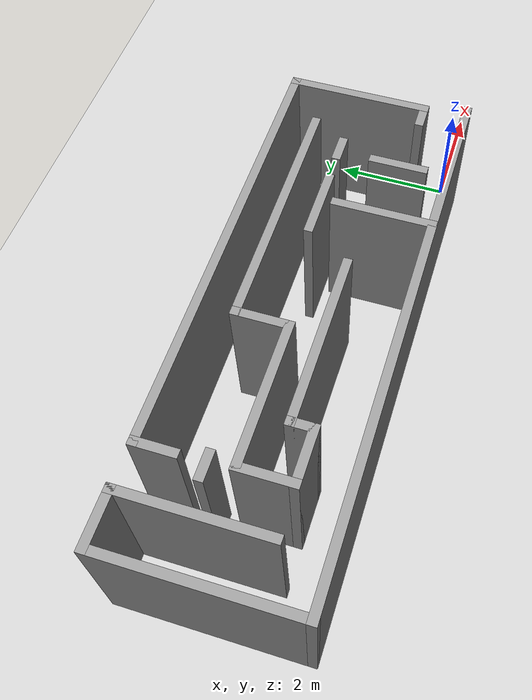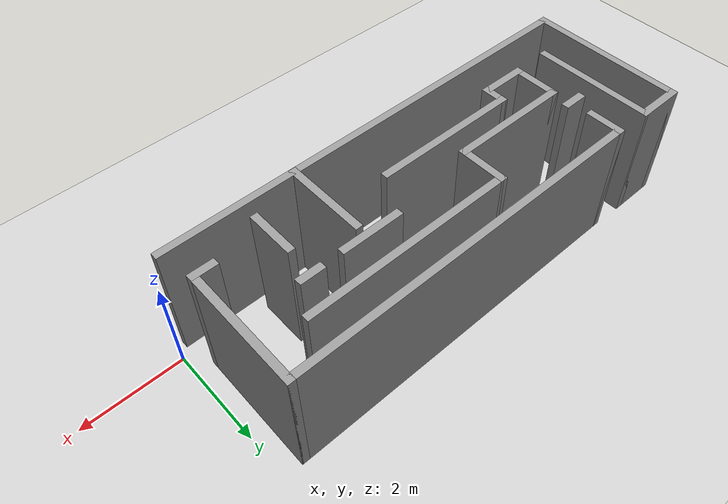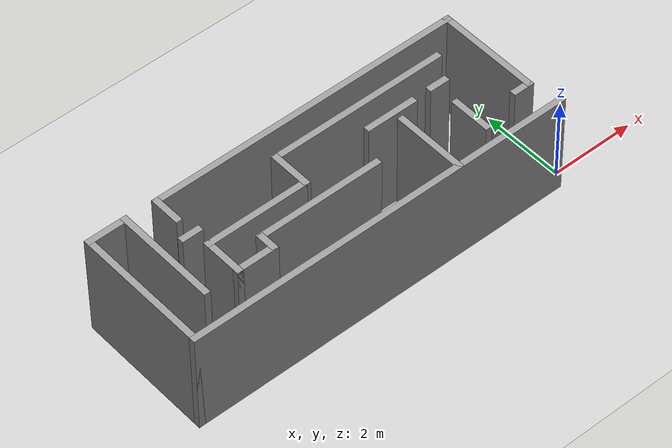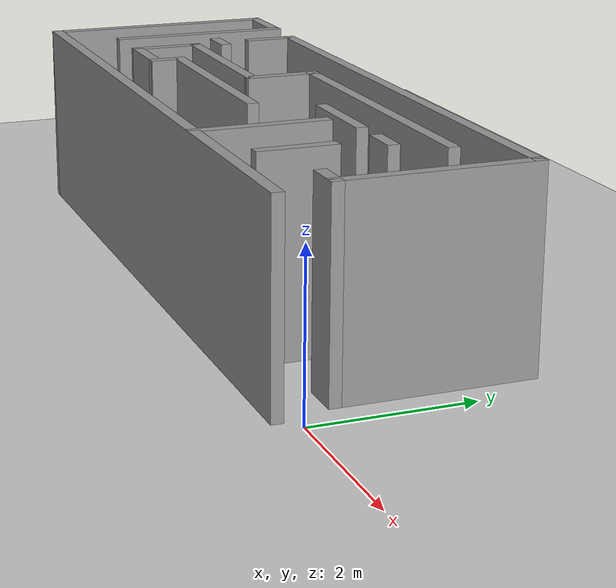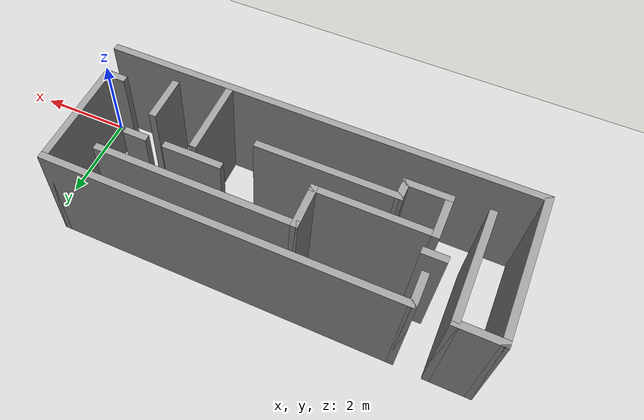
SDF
<sdf version="1.7">
 <world name="default">
  <light name="sun" type="directional">
   <pose>0 0 10 0 -0 0</pose>
   <diffuse>0.8 0.8 0.8 1</diffuse>
   <specular>0.2 0.2 0.2 1</specular>
   <attenuation>
    <range>1000</range>
    <constant>0.9</constant>
    <linear>0.01</linear>
    <quadratic>0.001</quadratic>
   </attenuation>
   <direction>-0.5 0.1 -0.9</direction>
   <spot><inner_angle>0</inner_angle><outer_angle>0</outer_angle><falloff>0</falloff></spot>
  </light>
  <model name="ground_plane">
   <static>1</static>
   <link name="link">
    <collision name="collision">
     <geometry><plane><normal>0 0 1</normal><size>100 100</size></plane></geometry>
     <surface>
      <contact><collide_bitmask>65535</collide_bitmask></contact>
      <friction><ode><mu>100</mu><mu2>50</mu2></ode></friction>
     </surface>
    </collision>
    <visual name="visual">
     <cast_shadows>0</cast_shadows>
     <geometry><plane><normal>0 0 1</normal><size>100 100</size></plane></geometry>
     <material>
      <script><uri>file://media/materials/scripts/gazebo.material</uri><name>Gazebo/Grey</name></script>
     </material>
    </visual>
   </link>
  </model>
  <gravity>0 0 -9.8</gravity>
  <magnetic_field>6e-06 2.3e-05 -4.2e-05</magnetic_field>
  <atmosphere type="adiabatic"/>
  <physics type="ode">
   <max_step_size>0.001</max_step_size>
   <real_time_factor>1</real_time_factor>
   <real_time_update_rate>1000</real_time_update_rate>
  </physics>
  <scene><ambient>0.4 0.4 0.4 1</ambient><background>0.7 0.7 0.7 1</background><shadows>1</shadows></scene>
  <spherical_coordinates>
   <surface_model>EARTH_WGS84</surface_model>
   <latitude_deg>0</latitude_deg>
   <longitude_deg>0</longitude_deg>
   <elevation>0</elevation>
   <heading_deg>0</heading_deg>
  </spherical_coordinates>
  <model name="maze.world">
   <pose>-4.79755 1.63842 0 0 -0 0</pose>
   <link name="Wall_0">
    <collision name="Wall_0_Collision">
     <geometry><box><size>9.25 0.15 2.5</size></box></geometry>
     <pose>0 0 1.25 0 -0 0</pose>
    </collision>
    <visual name="Wall_0_Visual">
     <pose>0 0 1.25 0 -0 0</pose>
     <geometry><box><size>9.25 0.15 2.5</size></box></geometry>
     <material>
      <script><uri>file://media/materials/scripts/gazebo.material</uri><name>Gazebo/Grey</name></script>
      <ambient>1 1 1 1</ambient>
     </material>
     <meta><layer>0</layer></meta>
    </visual>
    <pose>0 -1.8725 0 0 -0 0</pose>
   </link>
   <link name="Wall_10">
    <collision name="Wall_10_Collision">
     <geometry><box><size>0.5 0.15 2.5</size></box></geometry>
     <pose>0 0 1.25 0 -0 0</pose>
    </collision>
    <visual name="Wall_10_Visual">
     <pose>0 0 1.25 0 -0 0</pose>
     <geometry><box><size>0.5 0.15 2.5</size></box></geometry>
     <material>
      <script><uri>file://media/materials/scripts/gazebo.material</uri><name>Gazebo/Grey</name></script>
      <ambient>1 1 1 1</ambient>
     </material>
     <meta><layer>0</layer></meta>
    </visual>
    <pose>4.205 -1.1525 0 0 -0 3.14159</pose>
   </link>
   <link name="Wall_12">
    <collision name="Wall_12_Collision">
     <geometry><box><size>1 0.15 2.5</size></box></geometry>
     <pose>0 0 1.25 0 -0 0</pose>
    </collision>
    <visual name="Wall_12_Visual">
     <pose>0 0 1.25 0 -0 0</pose>
     <geometry><box><size>1 0.15 2.5</size></box></geometry>
     <material>
      <script><uri>file://media/materials/scripts/gazebo.material</uri><name>Gazebo/Grey</name></script>
      <ambient>1 1 1 1</ambient>
     </material>
     <meta><layer>0</layer></meta>
    </visual>
    <pose>-2.91 -0.6975 0 0 -0 1.5708</pose>
   </link>
   <link name="Wall_13">
    <collision name="Wall_13_Collision">
     <geometry><box><size>2.5 0.15 2.5</size></box></geometry>
     <pose>0 0 1.25 0 -0 0</pose>
    </collision>
    <visual name="Wall_13_Visual">
     <pose>0 0 1.25 0 -0 0</pose>
     <geometry><box><size>2.5 0.15 2.5</size></box></geometry>
     <material>
      <script><uri>file://media/materials/scripts/gazebo.material</uri><name>Gazebo/Grey</name></script>
      <ambient>1 1 1 1</ambient>
     </material>
     <meta><layer>0</layer></meta>
    </visual>
    <pose>-1.735 -0.2725 0 0 -0 0</pose>
   </link>
   <link name="Wall_16">
    <collision name="Wall_16_Collision">
     <geometry><box><size>1 0.15 2.5</size></box></geometry>
     <pose>0 0 1.25 0 -0 0</pose>
    </collision>
    <visual name="Wall_16_Visual">
     <pose>0 0 1.25 0 -0 0</pose>
     <geometry><box><size>1 0.15 2.5</size></box></geometry>
     <material>
      <script><uri>file://media/materials/scripts/gazebo.material</uri><name>Gazebo/Grey</name></script>
      <ambient>1 1 1 1</ambient>
     </material>
     <meta><layer>0</layer></meta>
    </visual>
    <pose>-2.485 -1.1225 0 0 -0 0</pose>
   </link>
   <link name="Wall_2">
    <collision name="Wall_2_Collision">
     <geometry><box><size>3.25 0.15 2.5</size></box></geometry>
     <pose>0 0 1.25 0 -0 0</pose>
    </collision>
    <visual name="Wall_2_Visual">
     <pose>0 0 1.25 0 -0 0</pose>
     <geometry><box><size>3.25 0.15 2.5</size></box></geometry>
     <material>
      <script><uri>file://media/materials/scripts/gazebo.material</uri><name>Gazebo/Grey</name></script>
      <ambient>1 1 1 1</ambient>
     </material>
     <meta><layer>0</layer></meta>
    </visual>
    <pose>-4.55 -0.3225 0 0 -0 1.5708</pose>
   </link>
   <link name="Wall_20">
    <collision name="Wall_20_Collision">
     <geometry><box><size>0.5 0.15 2.5</size></box></geometry>
     <pose>0 0 1.25 0 -0 0</pose>
    </collision>
    <visual name="Wall_20_Visual">
     <pose>0 0 1.25 0 -0 0</pose>
     <geometry><box><size>0.5 0.15 2.5</size></box></geometry>
     <material>
      <script><uri>file://media/materials/scripts/gazebo.material</uri><name>Gazebo/Grey</name></script>
      <ambient>1 1 1 1</ambient>
     </material>
     <meta><layer>0</layer></meta>
    </visual>
    <pose>-2.06 -0.9475 0 0 -0 1.5708</pose>
   </link>
   <link name="Wall_21">
    <collision name="Wall_21_Collision">
     <geometry><box><size>3 0.15 2.5</size></box></geometry>
     <pose>0 0 1.25 0 -0 0</pose>
    </collision>
    <visual name="Wall_21_Visual">
     <pose>0 0 1.25 0 -0 0</pose>
     <geometry><box><size>3 0.15 2.5</size></box></geometry>
     <material>
      <script><uri>file://media/materials/scripts/gazebo.material</uri><name>Gazebo/Grey</name></script>
      <ambient>1 1 1 1</ambient>
     </material>
     <meta><layer>0</layer></meta>
    </visual>
    <pose>-0.635 -0.7725 0 0 -0 0</pose>
   </link>
   <link name="Wall_23">
    <collision name="Wall_23_Collision">
     <geometry><box><size>1.75 0.15 2.5</size></box></geometry>
     <pose>0 0 1.25 0 -0 0</pose>
    </collision>
    <visual name="Wall_23_Visual">
     <pose>0 0 1.25 0 -0 0</pose>
     <geometry><box><size>1.75 0.15 2.5</size></box></geometry>
     <material>
      <script><uri>file://media/materials/scripts/gazebo.material</uri><name>Gazebo/Grey</name></script>
      <ambient>1 1 1 1</ambient>
     </material>
     <meta><layer>0</layer></meta>
    </visual>
    <pose>1.91 -1.0625 0 0 -0 1.5708</pose>
   </link>
   <link name="Wall_25">
    <collision name="Wall_25_Collision">
     <geometry><box><size>1 0.15 2.5</size></box></geometry>
     <pose>0 0 1.25 0 -0 0</pose>
    </collision>
    <visual name="Wall_25_Visual">
     <pose>0 0 1.25 0 -0 0</pose>
     <geometry><box><size>1 0.15 2.5</size></box></geometry>
     <material>
      <script><uri>file://media/materials/scripts/gazebo.material</uri><name>Gazebo/Grey</name></script>
      <ambient>1 1 1 1</ambient>
     </material>
     <meta><layer>0</layer></meta>
    </visual>
    <pose>2.99 -1.0375 0 0 -0 1.5708</pose>
   </link>
   <link name="Wall_27">
    <collision name="Wall_27_Collision">
     <geometry><box><size>1 0.15 2.5</size></box></geometry>
     <pose>0 0 1.25 0 -0 0</pose>
    </collision>
    <visual name="Wall_27_Visual">
     <pose>0 0 1.25 0 -0 0</pose>
     <geometry><box><size>1 0.15 2.5</size></box></geometry>
     <material>
      <script><uri>file://media/materials/scripts/gazebo.material</uri><name>Gazebo/Grey</name></script>
      <ambient>1 1 1 1</ambient>
     </material>
     <meta><layer>0</layer></meta>
    </visual>
    <pose>-0.56 0.1525 0 0 -0 1.5708</pose>
   </link>
   <link name="Wall_28">
    <collision name="Wall_28_Collision">
     <geometry><box><size>4.25 0.15 2.5</size></box></geometry>
     <pose>0 0 1.25 0 -0 0</pose>
    </collision>
    <visual name="Wall_28_Visual">
     <pose>0 0 1.25 0 -0 0</pose>
     <geometry><box><size>4.25 0.15 2.5</size></box></geometry>
     <material>
      <script><uri>file://media/materials/scripts/gazebo.material</uri><name>Gazebo/Grey</name></script>
      <ambient>1 1 1 1</ambient>
     </material>
     <meta><layer>0</layer></meta>
    </visual>
    <pose>1.49 0.5775 0 0 -0 0</pose>
   </link>
   <link name="Wall_30">
    <collision name="Wall_30_Collision">
     <geometry><box><size>0.5 0.15 2.5</size></box></geometry>
     <pose>0 0 1.25 0 -0 0</pose>
    </collision>
    <visual name="Wall_30_Visual">
     <pose>0 0 1.25 0 -0 0</pose>
     <geometry><box><size>0.5 0.15 2.5</size></box></geometry>
     <material>
      <script><uri>file://media/materials/scripts/gazebo.material</uri><name>Gazebo/Grey</name></script>
      <ambient>1 1 1 1</ambient>
     </material>
     <meta><layer>0</layer></meta>
    </visual>
    <pose>3.045 -0.0025 0 0 -0 0</pose>
   </link>
   <link name="Wall_32">
    <collision name="Wall_32_Collision">
     <geometry><box><size>0.5 0.15 2.5</size></box></geometry>
     <pose>0 0 1.25 0 -0 0</pose>
    </collision>
    <visual name="Wall_32_Visual">
     <pose>0 0 1.25 0 -0 0</pose>
     <geometry><box><size>0.5 0.15 2.5</size></box></geometry>
     <material>
      <script><uri>file://media/materials/scripts/gazebo.material</uri><name>Gazebo/Grey</name></script>
      <ambient>1 1 1 1</ambient>
     </material>
     <meta><layer>0</layer></meta>
    </visual>
    <pose>-3.015 0.1375 0 0 -0 0</pose>
   </link>
   <link name="Wall_34">
    <collision name="Wall_34_Collision">
     <geometry><box><size>1.25 0.15 2.5</size></box></geometry>
     <pose>0 0 1.25 0 -0 0</pose>
    </collision>
    <visual name="Wall_34_Visual">
     <pose>0 0 1.25 0 -0 0</pose>
     <geometry><box><size>1.25 0.15 2.5</size></box></geometry>
     <material>
      <script><uri>file://media/materials/scripts/gazebo.material</uri><name>Gazebo/Grey</name></script>
      <ambient>1 1 1 1</ambient>
     </material>
     <meta><layer>0</layer></meta>
    </visual>
    <pose>1.82 -0.0125 0 0 -0 3.14159</pose>
   </link>
   <link name="Wall_4">
    <collision name="Wall_4_Collision">
     <geometry><box><size>1 0.15 2.5</size></box></geometry>
     <pose>0 0 1.25 0 -0 0</pose>
    </collision>
    <visual name="Wall_4_Visual">
     <pose>0 0 1.25 0 -0 0</pose>
     <geometry><box><size>1 0.15 2.5</size></box></geometry>
     <material>
      <script><uri>file://media/materials/scripts/gazebo.material</uri><name>Gazebo/Grey</name></script>
      <ambient>1 1 1 1</ambient>
     </material>
     <meta><layer>0</layer></meta>
    </visual>
    <pose>-4.125 1.2275 0 0 -0 0</pose>
   </link>
   <link name="Wall_5">
    <collision name="Wall_5_Collision">
     <geometry><box><size>2.5 0.15 2.5</size></box></geometry>
     <pose>0 0 1.25 0 -0 0</pose>
    </collision>
    <visual name="Wall_5_Visual">
     <pose>0 0 1.25 0 -0 0</pose>
     <geometry><box><size>2.5 0.15 2.5</size></box></geometry>
     <material>
      <script><uri>file://media/materials/scripts/gazebo.material</uri><name>Gazebo/Grey</name></script>
      <ambient>1 1 1 1</ambient>
     </material>
     <meta><layer>0</layer></meta>
    </visual>
    <pose>-3.7 0.0525 0 0 -0 -1.5708</pose>
   </link>
   <link name="Wall_7">
    <collision name="Wall_7_Collision">
     <geometry><box><size>0.75 0.15 2.5</size></box></geometry>
     <pose>0 0 1.25 0 -0 0</pose>
    </collision>
    <visual name="Wall_7_Visual">
     <pose>0 0 1.25 0 -0 0</pose>
     <geometry><box><size>0.75 0.15 2.5</size></box></geometry>
     <material>
      <script><uri>file://media/materials/scripts/gazebo.material</uri><name>Gazebo/Grey</name></script>
      <ambient>1 1 1 1</ambient>
     </material>
     <meta><layer>0</layer></meta>
    </visual>
    <pose>-2.97 0.8975 0 0 -0 1.5708</pose>
   </link>
   <link name="Wall_8">
    <collision name="Wall_8_Collision">
     <geometry><box><size>7.5 0.15 2.5</size></box></geometry>
     <pose>0 0 1.25 0 -0 0</pose>
    </collision>
    <visual name="Wall_8_Visual">
     <pose>0 0 1.25 0 -0 0</pose>
     <geometry><box><size>7.5 0.15 2.5</size></box></geometry>
     <material>
      <script><uri>file://media/materials/scripts/gazebo.material</uri><name>Gazebo/Grey</name></script>
      <ambient>1 1 1 1</ambient>
     </material>
     <meta><layer>0</layer></meta>
    </visual>
    <pose>0.705 1.1975 0 0 -0 0</pose>
   </link>
   <link name="Wall_9">
    <collision name="Wall_9_Collision">
     <geometry><box><size>2.5 0.15 2.5</size></box></geometry>
     <pose>0 0 1.25 0 -0 0</pose>
    </collision>
    <visual name="Wall_9_Visual">
     <pose>0 0 1.25 0 -0 0</pose>
     <geometry><box><size>2.5 0.15 2.5</size></box></geometry>
     <material>
      <script><uri>file://media/materials/scripts/gazebo.material</uri><name>Gazebo/Grey</name></script>
      <ambient>1 1 1 1</ambient>
     </material>
     <meta><layer>0</layer></meta>
    </visual>
    <pose>4.38 0.0225 0 0 -0 -1.5708</pose>
   </link>
   <static>1</static>
  </model>
 </world>
</sdf>
